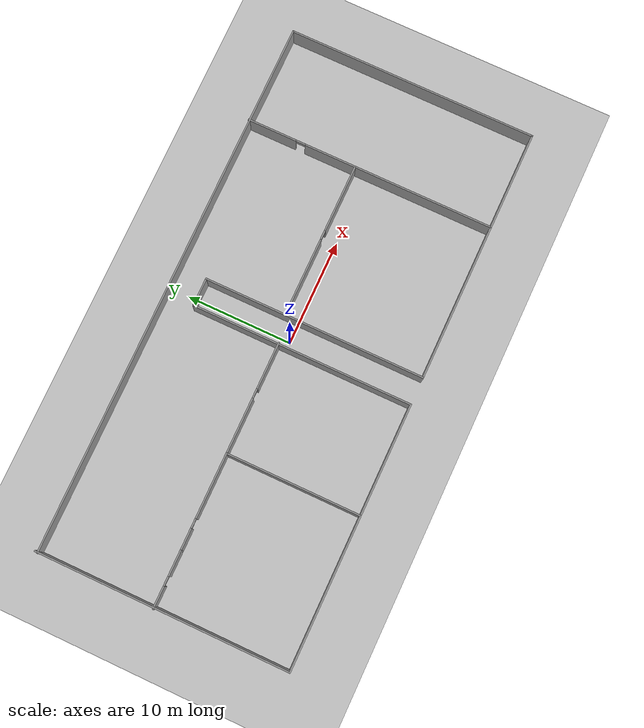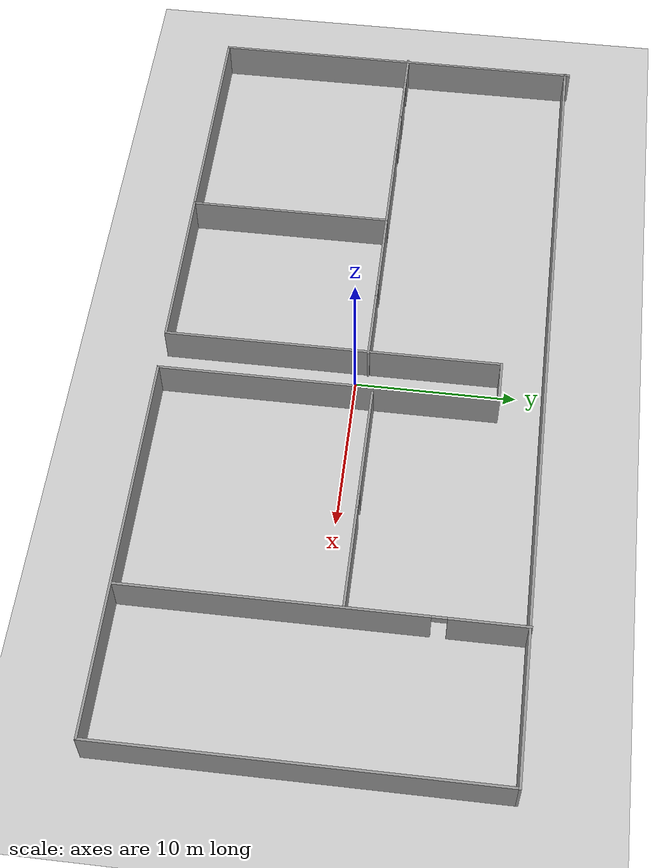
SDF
<sdf version="1.6">
 <world name="default">
  <light name="sun" type="directional">
   <pose>0 0 10 0 -0 0</pose>
   <diffuse>0.8 0.8 0.8 1</diffuse>
   <specular>0.1 0.1 0.1 1</specular>
   <attenuation>
    <range>1000</range>
    <constant>0.9</constant>
    <linear>0.01</linear>
    <quadratic>0.001</quadratic>
   </attenuation>
   <direction>-0.5 0.5 -1</direction>
  </light>
  <model name="ground_plane">
   <static>1</static>
   <link name="link">
    <collision name="collision">
     <geometry><plane><normal>0 0 1</normal><size>100 100</size></plane></geometry>
     <surface><friction><ode><mu>100</mu><mu2>50</mu2></ode></friction></surface>
    </collision>
    <visual name="visual">
     <cast_shadows>0</cast_shadows>
     <geometry><plane><normal>0 0 1</normal><size>100 100</size></plane></geometry>
     <material>
      <script><uri>file://media/materials/scripts/gazebo.material</uri><name>Gazebo/Grey</name></script>
     </material>
    </visual>
   </link>
  </model>
  <gravity>0 0 -9.8</gravity>
  <magnetic_field>6e-06 2.3e-05 -4.2e-05</magnetic_field>
  <atmosphere type="adiabatic"/>
  <physics name="default_physics" default="0" type="ode">
   <max_step_size>0.001</max_step_size>
   <real_time_factor>1</real_time_factor>
   <real_time_update_rate>1000</real_time_update_rate>
  </physics>
  <scene><ambient>0.4 0.4 0.4 1</ambient><background>0.7 0.7 0.7 1</background><shadows>1</shadows></scene>
  <spherical_coordinates>
   <surface_model>EARTH_WGS84</surface_model>
   <latitude_deg>0</latitude_deg>
   <longitude_deg>0</longitude_deg>
   <elevation>0</elevation>
   <heading_deg>0</heading_deg>
  </spherical_coordinates>
  <model name="building_2doors">
   <link name="Wall_0">
    <collision name="Wall_0_Collision">
     <geometry><box><size>24 0.15 2.5</size></box></geometry>
     <pose>0 0 1.25 0 -0 0</pose>
    </collision>
    <visual name="Wall_0_Visual">
     <pose>0 0 1.25 0 -0 0</pose>
     <geometry><box><size>24 0.15 2.5</size></box></geometry>
     <material>
      <script><uri>file://media/materials/scripts/gazebo.material</uri><name>Gazebo/Grey</name></script>
      <ambient>1 1 1 1</ambient>
     </material>
    </visual>
    <pose>-25.7135 0 0 0 0 -1.5708</pose>
   </link>
   <link name="Wall_1">
    <collision name="Wall_1_Collision">
     <geometry><box><size>25 0.15 2.5</size></box></geometry>
     <pose>0 0 1.25 0 -0 0</pose>
    </collision>
    <visual name="Wall_1_Visual">
     <pose>0 0 1.25 0 -0 0</pose>
     <geometry><box><size>25 0.15 2.5</size></box></geometry>
     <material>
      <script><uri>file://media/materials/scripts/gazebo.material</uri><name>Gazebo/Grey</name></script>
      <ambient>1 1 1 1</ambient>
     </material>
    </visual>
    <pose>-13.2885 -11.925 0 0 -0 0</pose>
   </link>
   <link name="Wall_10">
    <pose>-15.9365 0.726926 0 0 -0 0</pose>
    <visual name="Wall_10_Visual_0">
     <pose>-3.54972 0 1.25 0 -0 0</pose>
     <geometry><box><size>2.15057 0.15 2.5</size></box></geometry>
     <material>
      <script><uri>file://media/materials/scripts/gazebo.material</uri><name>Gazebo/Grey</name></script>
      <ambient>1 1 1 1</ambient>
     </material>
    </visual>
    <collision name="Wall_10_Collision_0">
     <geometry><box><size>2.15057 0.15 2.5</size></box></geometry>
     <pose>-3.54972 0 1.25 0 -0 0</pose>
    </collision>
    <visual name="Wall_10_Visual_1">
     <pose>1.52528 0 1.25 0 -0 0</pose>
     <geometry><box><size>6.19943 0.15 2.5</size></box></geometry>
     <material>
      <script><uri>file://media/materials/scripts/gazebo.material</uri><name>Gazebo/Grey</name></script>
      <ambient>1 1 1 1</ambient>
     </material>
    </visual>
    <collision name="Wall_10_Collision_1">
     <geometry><box><size>6.19943 0.15 2.5</size></box></geometry>
     <pose>1.52528 0 1.25 0 -0 0</pose>
    </collision>
    <visual name="Wall_10_Visual_2">
     <pose>-2.02443 0 2.25 0 -0 0</pose>
     <geometry><box><size>0.9 0.15 0.5</size></box></geometry>
     <material>
      <script><uri>file://media/materials/scripts/gazebo.material</uri><name>Gazebo/Grey</name></script>
      <ambient>1 1 1 1</ambient>
     </material>
    </visual>
    <collision name="Wall_10_Collision_2">
     <geometry><box><size>0.9 0.15 0.5</size></box></geometry>
     <pose>-2.02443 0 2.25 0 -0 0</pose>
    </collision>
   </link>
   <link name="Wall_11">
    <pose>-6.08653 0.726926 0 0 -0 0</pose>
    <visual name="Wall_11_Visual_0">
     <pose>-2.69693 0 1.25 0 -0 0</pose>
     <geometry><box><size>5.35614 0.15 2.5</size></box></geometry>
     <material>
      <script><uri>file://media/materials/scripts/gazebo.material</uri><name>Gazebo/Grey</name></script>
      <ambient>1 1 1 1</ambient>
     </material>
    </visual>
    <collision name="Wall_11_Collision_0">
     <geometry><box><size>5.35614 0.15 2.5</size></box></geometry>
     <pose>-2.69693 0 1.25 0 -0 0</pose>
    </collision>
    <visual name="Wall_11_Visual_1">
     <pose>3.12807 0 1.25 0 -0 0</pose>
     <geometry><box><size>4.49386 0.15 2.5</size></box></geometry>
     <material>
      <script><uri>file://media/materials/scripts/gazebo.material</uri><name>Gazebo/Grey</name></script>
      <ambient>1 1 1 1</ambient>
     </material>
    </visual>
    <collision name="Wall_11_Collision_1">
     <geometry><box><size>4.49386 0.15 2.5</size></box></geometry>
     <pose>3.12807 0 1.25 0 -0 0</pose>
    </collision>
    <visual name="Wall_11_Visual_2">
     <pose>0.431143 0 2.25 0 -0 0</pose>
     <geometry><box><size>0.9 0.15 0.5</size></box></geometry>
     <material>
      <script><uri>file://media/materials/scripts/gazebo.material</uri><name>Gazebo/Grey</name></script>
      <ambient>1 1 1 1</ambient>
     </material>
    </visual>
    <collision name="Wall_11_Collision_2">
     <geometry><box><size>0.9 0.15 0.5</size></box></geometry>
     <pose>0.431143 0 2.25 0 -0 0</pose>
    </collision>
   </link>
   <link name="Wall_13">
    <collision name="Wall_13_Collision">
     <geometry><box><size>12.75 0.15 2.5</size></box></geometry>
     <pose>0 0 1.25 0 -0 0</pose>
    </collision>
    <visual name="Wall_13_Visual">
     <pose>0 0 1.25 0 -0 0</pose>
     <geometry><box><size>12.75 0.15 2.5</size></box></geometry>
     <material>
      <script><uri>file://media/materials/scripts/gazebo.material</uri><name>Gazebo/Grey</name></script>
      <ambient>1 1 1 1</ambient>
     </material>
    </visual>
    <pose>-11.3865 -5.57307 0 0 0 -1.5708</pose>
   </link>
   <link name="Wall_15">
    <pose>9.27213 1.28068 0 0 -0 0</pose>
    <visual name="Wall_15_Visual_0">
     <pose>-3.65354 0 1.25 0 -0 0</pose>
     <geometry><box><size>7.19293 0.15 2.5</size></box></geometry>
     <material>
      <script><uri>file://media/materials/scripts/gazebo.material</uri><name>Gazebo/Grey</name></script>
      <ambient>1 1 1 1</ambient>
     </material>
    </visual>
    <collision name="Wall_15_Collision_0">
     <geometry><box><size>7.19293 0.15 2.5</size></box></geometry>
     <pose>-3.65354 0 1.25 0 -0 0</pose>
    </collision>
    <visual name="Wall_15_Visual_1">
     <pose>4.04646 0 1.25 0 -0 0</pose>
     <geometry><box><size>6.40707 0.15 2.5</size></box></geometry>
     <material>
      <script><uri>file://media/materials/scripts/gazebo.material</uri><name>Gazebo/Grey</name></script>
      <ambient>1 1 1 1</ambient>
     </material>
    </visual>
    <collision name="Wall_15_Collision_1">
     <geometry><box><size>6.40707 0.15 2.5</size></box></geometry>
     <pose>4.04646 0 1.25 0 -0 0</pose>
    </collision>
    <visual name="Wall_15_Visual_2">
     <pose>0.392928 0 2.25 0 -0 0</pose>
     <geometry><box><size>0.9 0.15 0.5</size></box></geometry>
     <material>
      <script><uri>file://media/materials/scripts/gazebo.material</uri><name>Gazebo/Grey</name></script>
      <ambient>1 1 1 1</ambient>
     </material>
    </visual>
    <collision name="Wall_15_Collision_2">
     <geometry><box><size>0.9 0.15 0.5</size></box></geometry>
     <pose>0.392928 0 2.25 0 -0 0</pose>
    </collision>
   </link>
   <link name="Wall_17">
    <pose>16.5562 -0.059584 0 0 0 -1.5708</pose>
    <visual name="Wall_17_Visual_0">
     <pose>-9.50909 0 1.25 0 -0 0</pose>
     <geometry><box><size>4.73181 0.15 2.5</size></box></geometry>
     <material>
      <script><uri>file://media/materials/scripts/gazebo.material</uri><name>Gazebo/Grey</name></script>
      <ambient>1 1 1 1</ambient>
     </material>
    </visual>
    <collision name="Wall_17_Collision_0">
     <geometry><box><size>4.73181 0.15 2.5</size></box></geometry>
     <pose>-9.50909 0 1.25 0 -0 0</pose>
    </collision>
    <visual name="Wall_17_Visual_1">
     <pose>2.81591 0 1.25 0 -0 0</pose>
     <geometry><box><size>18.1182 0.15 2.5</size></box></geometry>
     <material>
      <script><uri>file://media/materials/scripts/gazebo.material</uri><name>Gazebo/Grey</name></script>
      <ambient>1 1 1 1</ambient>
     </material>
    </visual>
    <collision name="Wall_17_Collision_1">
     <geometry><box><size>18.1182 0.15 2.5</size></box></geometry>
     <pose>2.81591 0 1.25 0 -0 0</pose>
    </collision>
    <visual name="Wall_17_Visual_2">
     <pose>-6.69319 0 2.25 0 -0 0</pose>
     <geometry><box><size>0.9 0.15 0.5</size></box></geometry>
     <material>
      <script><uri>file://media/materials/scripts/gazebo.material</uri><name>Gazebo/Grey</name></script>
      <ambient>1 1 1 1</ambient>
     </material>
    </visual>
    <collision name="Wall_17_Collision_2">
     <geometry><box><size>0.9 0.15 0.5</size></box></geometry>
     <pose>-6.69319 0 2.25 0 -0 0</pose>
    </collision>
   </link>
   <link name="Wall_2">
    <collision name="Wall_2_Collision">
     <geometry><box><size>21 0.15 2.5</size></box></geometry>
     <pose>0 0 1.25 0 -0 0</pose>
    </collision>
    <visual name="Wall_2_Visual">
     <pose>0 0 1.25 0 -0 0</pose>
     <geometry><box><size>21 0.15 2.5</size></box></geometry>
     <material>
      <script><uri>file://media/materials/scripts/gazebo.material</uri><name>Gazebo/Grey</name></script>
      <ambient>1 1 1 1</ambient>
     </material>
    </visual>
    <pose>-0.863473 -1.5 0 0 -0 1.5708</pose>
   </link>
   <link name="Wall_3">
    <collision name="Wall_3_Collision">
     <geometry><box><size>2.75 0.15 2.5</size></box></geometry>
     <pose>0 0 1.25 0 -0 0</pose>
    </collision>
    <visual name="Wall_3_Visual">
     <pose>0 0 1.25 0 -0 0</pose>
     <geometry><box><size>2.75 0.15 2.5</size></box></geometry>
     <material>
      <script><uri>file://media/materials/scripts/gazebo.material</uri><name>Gazebo/Grey</name></script>
      <ambient>1 1 1 1</ambient>
     </material>
    </visual>
    <pose>0.436527 8.925 0 0 -0 0</pose>
   </link>
   <link name="Wall_4">
    <collision name="Wall_4_Collision">
     <geometry><box><size>21 0.15 2.5</size></box></geometry>
     <pose>0 0 1.25 0 -0 0</pose>
    </collision>
    <visual name="Wall_4_Visual">
     <pose>0 0 1.25 0 -0 0</pose>
     <geometry><box><size>21 0.15 2.5</size></box></geometry>
     <material>
      <script><uri>file://media/materials/scripts/gazebo.material</uri><name>Gazebo/Grey</name></script>
      <ambient>1 1 1 1</ambient>
     </material>
    </visual>
    <pose>1.73653 -1.5 0 0 0 -1.5708</pose>
   </link>
   <link name="Wall_5">
    <collision name="Wall_5_Collision">
     <geometry><box><size>24.25 0.15 2.5</size></box></geometry>
     <pose>0 0 1.25 0 -0 0</pose>
    </collision>
    <visual name="Wall_5_Visual">
     <pose>0 0 1.25 0 -0 0</pose>
     <geometry><box><size>24.25 0.15 2.5</size></box></geometry>
     <material>
      <script><uri>file://media/materials/scripts/gazebo.material</uri><name>Gazebo/Grey</name></script>
      <ambient>1 1 1 1</ambient>
     </material>
    </visual>
    <pose>13.7865 -11.925 0 0 -0 0</pose>
   </link>
   <link name="Wall_6">
    <collision name="Wall_6_Collision">
     <geometry><box><size>23.75 0.15 2.5</size></box></geometry>
     <pose>0 0 1.25 0 -0 0</pose>
    </collision>
    <visual name="Wall_6_Visual">
     <pose>0 0 1.25 0 -0 0</pose>
     <geometry><box><size>23.75 0.15 2.5</size></box></geometry>
     <material>
      <script><uri>file://media/materials/scripts/gazebo.material</uri><name>Gazebo/Grey</name></script>
      <ambient>1 1 1 1</ambient>
     </material>
    </visual>
    <pose>25.8365 -0.125 0 0 -0 1.5708</pose>
   </link>
   <link name="Wall_7">
    <collision name="Wall_7_Collision">
     <geometry><box><size>51.75 0.15 2.5</size></box></geometry>
     <pose>0 0 1.25 0 -0 0</pose>
    </collision>
    <visual name="Wall_7_Visual">
     <pose>0 0 1.25 0 -0 0</pose>
     <geometry><box><size>51.75 0.15 2.5</size></box></geometry>
     <material>
      <script><uri>file://media/materials/scripts/gazebo.material</uri><name>Gazebo/Grey</name></script>
      <ambient>1 1 1 1</ambient>
     </material>
    </visual>
    <pose>0.036527 11.675 0 0 -0 3.14159</pose>
   </link>
   <link name="Wall_9">
    <pose>-23.1615 0.726926 0 0 -0 0</pose>
    <visual name="Wall_9_Visual_0">
     <pose>-1.67618 0 1.25 0 -0 0</pose>
     <geometry><box><size>2.14764 0.15 2.5</size></box></geometry>
     <material>
      <script><uri>file://media/materials/scripts/gazebo.material</uri><name>Gazebo/Grey</name></script>
      <ambient>1 1 1 1</ambient>
     </material>
    </visual>
    <collision name="Wall_9_Collision_0">
     <geometry><box><size>2.14764 0.15 2.5</size></box></geometry>
     <pose>-1.67618 0 1.25 0 -0 0</pose>
    </collision>
    <visual name="Wall_9_Visual_1">
     <pose>1.52382 0 1.25 0 -0 0</pose>
     <geometry><box><size>2.45236 0.15 2.5</size></box></geometry>
     <material>
      <script><uri>file://media/materials/scripts/gazebo.material</uri><name>Gazebo/Grey</name></script>
      <ambient>1 1 1 1</ambient>
     </material>
    </visual>
    <collision name="Wall_9_Collision_1">
     <geometry><box><size>2.45236 0.15 2.5</size></box></geometry>
     <pose>1.52382 0 1.25 0 -0 0</pose>
    </collision>
    <visual name="Wall_9_Visual_2">
     <pose>-0.152357 0 2.25 0 -0 0</pose>
     <geometry><box><size>0.9 0.15 0.5</size></box></geometry>
     <material>
      <script><uri>file://media/materials/scripts/gazebo.material</uri><name>Gazebo/Grey</name></script>
      <ambient>1 1 1 1</ambient>
     </material>
    </visual>
    <collision name="Wall_9_Collision_2">
     <geometry><box><size>0.9 0.15 0.5</size></box></geometry>
     <pose>-0.152357 0 2.25 0 -0 0</pose>
    </collision>
   </link>
   <static>1</static>
  </model>
 </world>
</sdf>
